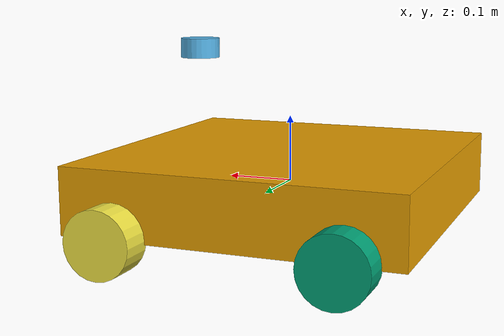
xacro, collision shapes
<?xml version="1.0" ?>

<!-- Author: YueLin -->

<robot name="rect" xmlns:xacro="http://www.ros.org/wiki/xacro">

    <xacro:property name="robot_mass" value="15" />
    <xacro:property name="robot_size" value="0.5" />
    <xacro:property name="robot_height" value="0.1" />

    <xacro:property name="PI" value="3.141592653589793" />

    <xacro:macro name="box_inertial_matrix" params="m l h w">
        <inertial>
            <mass value="${m}" />
            <inertia ixx="${(m * (l * l + h * h)) / 12}" iyz="0"
                     iyy="${(m * (w * w + h * h)) / 12}" ixz="0"
                     izz="${(m * (w * w + l * l)) / 12}" ixy="0" />
        </inertial>
    </xacro:macro>

    <xacro:macro name="cylinder_inertial_matrix" params="m r h xyz rpy">
        <inertial>
            <mass value="${m}" />
            <origin xyz="${xyz}" rpy="${rpy}" />
            <inertia izz="${m * r * r / 2}" ixy="0"
                     ixx="${m * (3 * r * r + h * h) / 12}" iyz="0"
                     iyy="${m * (3 * r * r + h * h) / 12}" ixz="0" />
        </inertial>
    </xacro:macro>

    <xacro:macro name="wheel_link" params="name x">
        <link name="${name}">
            <pose>0 0 0 0 0 0</pose>
            <collision>
                <origin xyz="${x} 0 0" rpy="0 ${PI / 2} 0" />
                <geometry>
                    <cylinder length="${robot_size / 10}"
                              radius="${robot_size / 10}" />
                </geometry>
            </collision>
            <xacro:cylinder_inertial_matrix m="0.525"
                                            h="${robot_size / 10}"
                                            r="${robot_size / 10}"
                                            xyz="${x} 0 0" rpy="0 ${PI / 2} 0" />
        </link>
    </xacro:macro>

    <xacro:macro name="wheel_joint" params="name x y">
        <joint name="${name}_joint" type="fixed">
            <child link="${name}" />
            <parent link="base_link" />
            <origin xyz="${x} ${y} -0.045" rpy="0 0 ${PI / 2}" />
        </joint>
    </xacro:macro>

    <link name="base_link">
        <visual>
            <origin xyz="0 0 0" rpy="0 0 ${PI / 2}" />
            <geometry>
                <mesh filename="package://simulator/models/robot/robot.dae"
                      scale="${robot_size / 2} ${robot_size / 3} ${robot_size / 3}"
                />
            </geometry>
        </visual>
        <collision>
            <geometry>
                <box size="${robot_size} ${robot_size} ${robot_height}" />
            </geometry>
        </collision>
        <xacro:box_inertial_matrix m="${robot_mass}"
         l="${robot_size}" h="${robot_height}" w="${robot_size}" />
    </link>

    <link name="lidar">
        <pose>0 0 0 0 0 0</pose>
        <collision>
            <origin xyz="0 0 0" rpy="0 0 0" />
            <geometry>
                <cylinder radius="0.03" length="0.03" />
            </geometry>
        </collision>
        <xacro:cylinder_inertial_matrix m="0.2" r="0.03" h="0.03"
                                        xyz="0 0 0" rpy="0 ${PI / 2} 0" />
    </link>

    <xacro:wheel_link name="left_back_wheel" x="0.02" />
    <xacro:wheel_link name="left_front_wheel" x="0.02" />
    <xacro:wheel_link name="right_back_wheel" x="-0.02" />
    <xacro:wheel_link name="right_front_wheel" x="-0.02" />

    <xacro:wheel_joint name="left_front_wheel"
                       x="${robot_size / 3}" y="${robot_size / 2}" />
    <xacro:wheel_joint name="left_back_wheel"
                       x="${-robot_size / 3}" y="${robot_size / 2}" />
    <xacro:wheel_joint name="right_front_wheel"
                       x="${robot_size / 3}" y="${-robot_size / 2}" />
    <xacro:wheel_joint name="right_back_wheel"
                       x="${-robot_size / 3}" y="${-robot_size / 2}" />

    <joint name="lidar_joint" type="fixed">
        <origin xyz="0.15 0 0.2" rpy="0 0 0" />
        <parent link="base_link" />
        <child link="lidar" />
    </joint>

</robot>
